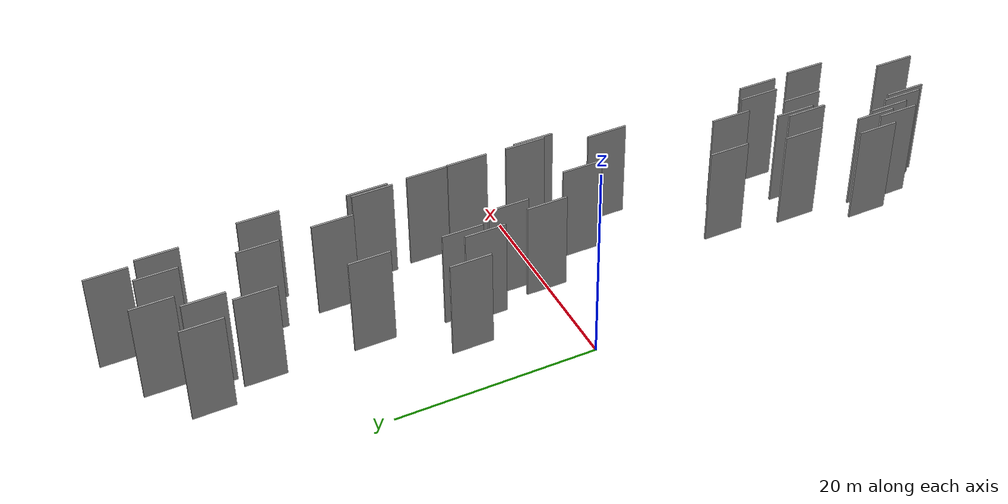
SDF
<sdf version="1.6">
 <world name="default">
  <scene>
   <sky><clouds><speed>12</speed></clouds></sky>
   <ambient>0.4 0.4 0.4 1</ambient>
   <background>0.7 0.7 0.7 1</background>
   <shadows>1</shadows>
  </scene>
  <gravity>0 0 -9.8066</gravity>
  <magnetic_field>6e-06 2.3e-05 -4.2e-05</magnetic_field>
  <physics default="0" name="default_physics" type="ode">
   <ode>
    <solver>
     <type>quick</type>
     <iters>10</iters>
     <sor>1.0</sor>
     <use_dynamic_moi_rescaling>0</use_dynamic_moi_rescaling>
    </solver>
    <constraints>
     <cfm>0</cfm>
     <erp>0.2</erp>
     <contact_max_correcting_vel>100</contact_max_correcting_vel>
     <contact_surface_layer>0.001</contact_surface_layer>
    </constraints>
   </ode>
   <max_step_size>0.004</max_step_size>
   <real_time_factor>1</real_time_factor>
   <real_time_update_rate>250</real_time_update_rate>
  </physics>
  <light name="sun" type="directional">
   <pose>0 0 10 0 0 0</pose>
   <diffuse>0.8 0.8 0.8 1</diffuse>
   <specular>0.2 0.2 0.2 1</specular>
   <attenuation>
    <range>1000</range>
    <constant>0.9</constant>
    <linear>0.01</linear>
    <quadratic>0.001</quadratic>
   </attenuation>
   <direction>-0.5 0.1 -0.9</direction>
  </light>
  <model name="grey_wall_1">
   <static>1</static>
   <pose>7.3173 -37.5238 2.5 0.000000 0.000000 1.570796</pose>
   <link name="link">
    <pose>0 0 5.00 0 0 0</pose>
    <collision name="collision"><geometry><box><size>4.00 0.2 10.00</size></box></geometry></collision>
    <visual name="visual">
     <cast_shadows>0</cast_shadows>
     <geometry><box><size>4.00 0.2 10.00</size></box></geometry>
     <material>
      <script>
       <uri>model://grey_wall/materials/scripts</uri>
       <uri>model://grey_wall/materials/textures</uri>
       <name>vrc/grey_wall</name>
      </script>
     </material>
    </visual>
   </link>
  </model>
  <model name="grey_wall_2">
   <static>1</static>
   <pose>5.8204 -34.6056 2.5 0.000000 0.000000 1.570796</pose>
   <link name="link">
    <pose>0 0 5.00 0 0 0</pose>
    <collision name="collision"><geometry><box><size>4.00 0.2 10.00</size></box></geometry></collision>
    <visual name="visual">
     <cast_shadows>0</cast_shadows>
     <geometry><box><size>4.00 0.2 10.00</size></box></geometry>
     <material>
      <script>
       <uri>model://grey_wall/materials/scripts</uri>
       <uri>model://grey_wall/materials/textures</uri>
       <name>vrc/grey_wall</name>
      </script>
     </material>
    </visual>
   </link>
  </model>
  <model name="grey_wall_3">
   <static>1</static>
   <pose>3.0021 10.9144 2.5 0.000000 0.000000 1.570796</pose>
   <link name="link">
    <pose>0 0 5.00 0 0 0</pose>
    <collision name="collision"><geometry><box><size>4.00 0.2 10.00</size></box></geometry></collision>
    <visual name="visual">
     <cast_shadows>0</cast_shadows>
     <geometry><box><size>4.00 0.2 10.00</size></box></geometry>
     <material>
      <script>
       <uri>model://grey_wall/materials/scripts</uri>
       <uri>model://grey_wall/materials/textures</uri>
       <name>vrc/grey_wall</name>
      </script>
     </material>
    </visual>
   </link>
  </model>
  <model name="grey_wall_4">
   <static>1</static>
   <pose>14.2386 -8.4530 2.5 0.000000 0.000000 1.570796</pose>
   <link name="link">
    <pose>0 0 5.00 0 0 0</pose>
    <collision name="collision"><geometry><box><size>4.00 0.2 10.00</size></box></geometry></collision>
    <visual name="visual">
     <cast_shadows>0</cast_shadows>
     <geometry><box><size>4.00 0.2 10.00</size></box></geometry>
     <material>
      <script>
       <uri>model://grey_wall/materials/scripts</uri>
       <uri>model://grey_wall/materials/textures</uri>
       <name>vrc/grey_wall</name>
      </script>
     </material>
    </visual>
   </link>
  </model>
  <model name="grey_wall_5">
   <static>1</static>
   <pose>6.6783 -17.2937 2.5 0.000000 0.000000 1.570796</pose>
   <link name="link">
    <pose>0 0 5.00 0 0 0</pose>
    <collision name="collision"><geometry><box><size>4.00 0.2 10.00</size></box></geometry></collision>
    <visual name="visual">
     <cast_shadows>0</cast_shadows>
     <geometry><box><size>4.00 0.2 10.00</size></box></geometry>
     <material>
      <script>
       <uri>model://grey_wall/materials/scripts</uri>
       <uri>model://grey_wall/materials/textures</uri>
       <name>vrc/grey_wall</name>
      </script>
     </material>
    </visual>
   </link>
  </model>
  <model name="grey_wall_6">
   <static>1</static>
   <pose>12.9910 -24.4684 2.5 0.000000 0.000000 1.570796</pose>
   <link name="link">
    <pose>0 0 5.00 0 0 0</pose>
    <collision name="collision"><geometry><box><size>4.00 0.2 10.00</size></box></geometry></collision>
    <visual name="visual">
     <cast_shadows>0</cast_shadows>
     <geometry><box><size>4.00 0.2 10.00</size></box></geometry>
     <material>
      <script>
       <uri>model://grey_wall/materials/scripts</uri>
       <uri>model://grey_wall/materials/textures</uri>
       <name>vrc/grey_wall</name>
      </script>
     </material>
    </visual>
   </link>
  </model>
  <model name="grey_wall_7">
   <static>1</static>
   <pose>11.1211 -20.2022 2.5 0.000000 0.000000 1.570796</pose>
   <link name="link">
    <pose>0 0 5.00 0 0 0</pose>
    <collision name="collision"><geometry><box><size>4.00 0.2 10.00</size></box></geometry></collision>
    <visual name="visual">
     <cast_shadows>0</cast_shadows>
     <geometry><box><size>4.00 0.2 10.00</size></box></geometry>
     <material>
      <script>
       <uri>model://grey_wall/materials/scripts</uri>
       <uri>model://grey_wall/materials/textures</uri>
       <name>vrc/grey_wall</name>
      </script>
     </material>
    </visual>
   </link>
  </model>
  <model name="grey_wall_8">
   <static>1</static>
   <pose>16.1027 5.1645 2.5 0.000000 0.000000 1.570796</pose>
   <link name="link">
    <pose>0 0 5.00 0 0 0</pose>
    <collision name="collision"><geometry><box><size>4.00 0.2 10.00</size></box></geometry></collision>
    <visual name="visual">
     <cast_shadows>0</cast_shadows>
     <geometry><box><size>4.00 0.2 10.00</size></box></geometry>
     <material>
      <script>
       <uri>model://grey_wall/materials/scripts</uri>
       <uri>model://grey_wall/materials/textures</uri>
       <name>vrc/grey_wall</name>
      </script>
     </material>
    </visual>
   </link>
  </model>
  <model name="grey_wall_9">
   <static>1</static>
   <pose>15.3145 39.4141 2.5 0.000000 0.000000 1.570796</pose>
   <link name="link">
    <pose>0 0 5.00 0 0 0</pose>
    <collision name="collision"><geometry><box><size>4.00 0.2 10.00</size></box></geometry></collision>
    <visual name="visual">
     <cast_shadows>0</cast_shadows>
     <geometry><box><size>4.00 0.2 10.00</size></box></geometry>
     <material>
      <script>
       <uri>model://grey_wall/materials/scripts</uri>
       <uri>model://grey_wall/materials/textures</uri>
       <name>vrc/grey_wall</name>
      </script>
     </material>
    </visual>
   </link>
  </model>
  <model name="grey_wall_10">
   <static>1</static>
   <pose>16.2475 -1.7299 2.5 0.000000 0.000000 1.570796</pose>
   <link name="link">
    <pose>0 0 5.00 0 0 0</pose>
    <collision name="collision"><geometry><box><size>4.00 0.2 10.00</size></box></geometry></collision>
    <visual name="visual">
     <cast_shadows>0</cast_shadows>
     <geometry><box><size>4.00 0.2 10.00</size></box></geometry>
     <material>
      <script>
       <uri>model://grey_wall/materials/scripts</uri>
       <uri>model://grey_wall/materials/textures</uri>
       <name>vrc/grey_wall</name>
      </script>
     </material>
    </visual>
   </link>
  </model>
  <model name="grey_wall_11">
   <static>1</static>
   <pose>4.7499 -34.8675 2.5 0.000000 0.000000 1.570796</pose>
   <link name="link">
    <pose>0 0 5.00 0 0 0</pose>
    <collision name="collision"><geometry><box><size>4.00 0.2 10.00</size></box></geometry></collision>
    <visual name="visual">
     <cast_shadows>0</cast_shadows>
     <geometry><box><size>4.00 0.2 10.00</size></box></geometry>
     <material>
      <script>
       <uri>model://grey_wall/materials/scripts</uri>
       <uri>model://grey_wall/materials/textures</uri>
       <name>vrc/grey_wall</name>
      </script>
     </material>
    </visual>
   </link>
  </model>
  <model name="grey_wall_12">
   <static>1</static>
   <pose>8.4133 4.6597 2.5 0.000000 0.000000 1.570796</pose>
   <link name="link">
    <pose>0 0 5.00 0 0 0</pose>
    <collision name="collision"><geometry><box><size>4.00 0.2 10.00</size></box></geometry></collision>
    <visual name="visual">
     <cast_shadows>0</cast_shadows>
     <geometry><box><size>4.00 0.2 10.00</size></box></geometry>
     <material>
      <script>
       <uri>model://grey_wall/materials/scripts</uri>
       <uri>model://grey_wall/materials/textures</uri>
       <name>vrc/grey_wall</name>
      </script>
     </material>
    </visual>
   </link>
  </model>
  <model name="grey_wall_13">
   <static>1</static>
   <pose>15.9140 34.7447 2.5 0.000000 0.000000 1.570796</pose>
   <link name="link">
    <pose>0 0 5.00 0 0 0</pose>
    <collision name="collision"><geometry><box><size>4.00 0.2 10.00</size></box></geometry></collision>
    <visual name="visual">
     <cast_shadows>0</cast_shadows>
     <geometry><box><size>4.00 0.2 10.00</size></box></geometry>
     <material>
      <script>
       <uri>model://grey_wall/materials/scripts</uri>
       <uri>model://grey_wall/materials/textures</uri>
       <name>vrc/grey_wall</name>
      </script>
     </material>
    </visual>
   </link>
  </model>
  <model name="grey_wall_14">
   <static>1</static>
   <pose>14.5474 -25.3134 2.5 0.000000 0.000000 1.570796</pose>
   <link name="link">
    <pose>0 0 5.00 0 0 0</pose>
    <collision name="collision"><geometry><box><size>4.00 0.2 10.00</size></box></geometry></collision>
    <visual name="visual">
     <cast_shadows>0</cast_shadows>
     <geometry><box><size>4.00 0.2 10.00</size></box></geometry>
     <material>
      <script>
       <uri>model://grey_wall/materials/scripts</uri>
       <uri>model://grey_wall/materials/textures</uri>
       <name>vrc/grey_wall</name>
      </script>
     </material>
    </visual>
   </link>
  </model>
  <model name="grey_wall_15">
   <static>1</static>
   <pose>8.5035 33.0226 2.5 0.000000 0.000000 1.570796</pose>
   <link name="link">
    <pose>0 0 5.00 0 0 0</pose>
    <collision name="collision"><geometry><box><size>4.00 0.2 10.00</size></box></geometry></collision>
    <visual name="visual">
     <cast_shadows>0</cast_shadows>
     <geometry><box><size>4.00 0.2 10.00</size></box></geometry>
     <material>
      <script>
       <uri>model://grey_wall/materials/scripts</uri>
       <uri>model://grey_wall/materials/textures</uri>
       <name>vrc/grey_wall</name>
      </script>
     </material>
    </visual>
   </link>
  </model>
  <model name="grey_wall_16">
   <static>1</static>
   <pose>10.4784 -3.8831 2.5 0.000000 0.000000 1.570796</pose>
   <link name="link">
    <pose>0 0 5.00 0 0 0</pose>
    <collision name="collision"><geometry><box><size>4.00 0.2 10.00</size></box></geometry></collision>
    <visual name="visual">
     <cast_shadows>0</cast_shadows>
     <geometry><box><size>4.00 0.2 10.00</size></box></geometry>
     <material>
      <script>
       <uri>model://grey_wall/materials/scripts</uri>
       <uri>model://grey_wall/materials/textures</uri>
       <name>vrc/grey_wall</name>
      </script>
     </material>
    </visual>
   </link>
  </model>
  <model name="grey_wall_17">
   <static>1</static>
   <pose>6.9984 9.8219 2.5 0.000000 0.000000 1.570796</pose>
   <link name="link">
    <pose>0 0 5.00 0 0 0</pose>
    <collision name="collision"><geometry><box><size>4.00 0.2 10.00</size></box></geometry></collision>
    <visual name="visual">
     <cast_shadows>0</cast_shadows>
     <geometry><box><size>4.00 0.2 10.00</size></box></geometry>
     <material>
      <script>
       <uri>model://grey_wall/materials/scripts</uri>
       <uri>model://grey_wall/materials/textures</uri>
       <name>vrc/grey_wall</name>
      </script>
     </material>
    </visual>
   </link>
  </model>
  <model name="grey_wall_18">
   <static>1</static>
   <pose>5.5448 34.1717 2.5 0.000000 0.000000 1.570796</pose>
   <link name="link">
    <pose>0 0 5.00 0 0 0</pose>
    <collision name="collision"><geometry><box><size>4.00 0.2 10.00</size></box></geometry></collision>
    <visual name="visual">
     <cast_shadows>0</cast_shadows>
     <geometry><box><size>4.00 0.2 10.00</size></box></geometry>
     <material>
      <script>
       <uri>model://grey_wall/materials/scripts</uri>
       <uri>model://grey_wall/materials/textures</uri>
       <name>vrc/grey_wall</name>
      </script>
     </material>
    </visual>
   </link>
  </model>
  <model name="grey_wall_19">
   <static>1</static>
   <pose>12.9956 26.5894 2.5 0.000000 0.000000 1.570796</pose>
   <link name="link">
    <pose>0 0 5.00 0 0 0</pose>
    <collision name="collision"><geometry><box><size>4.00 0.2 10.00</size></box></geometry></collision>
    <visual name="visual">
     <cast_shadows>0</cast_shadows>
     <geometry><box><size>4.00 0.2 10.00</size></box></geometry>
     <material>
      <script>
       <uri>model://grey_wall/materials/scripts</uri>
       <uri>model://grey_wall/materials/textures</uri>
       <name>vrc/grey_wall</name>
      </script>
     </material>
    </visual>
   </link>
  </model>
  <model name="grey_wall_20">
   <static>1</static>
   <pose>9.9508 37.0574 2.5 0.000000 0.000000 1.570796</pose>
   <link name="link">
    <pose>0 0 5.00 0 0 0</pose>
    <collision name="collision"><geometry><box><size>4.00 0.2 10.00</size></box></geometry></collision>
    <visual name="visual">
     <cast_shadows>0</cast_shadows>
     <geometry><box><size>4.00 0.2 10.00</size></box></geometry>
     <material>
      <script>
       <uri>model://grey_wall/materials/scripts</uri>
       <uri>model://grey_wall/materials/textures</uri>
       <name>vrc/grey_wall</name>
      </script>
     </material>
    </visual>
   </link>
  </model>
  <model name="grey_wall_21">
   <static>1</static>
   <pose>14.8064 -30.8882 2.5 0.000000 0.000000 1.570796</pose>
   <link name="link">
    <pose>0 0 5.00 0 0 0</pose>
    <collision name="collision"><geometry><box><size>4.00 0.2 10.00</size></box></geometry></collision>
    <visual name="visual">
     <cast_shadows>0</cast_shadows>
     <geometry><box><size>4.00 0.2 10.00</size></box></geometry>
     <material>
      <script>
       <uri>model://grey_wall/materials/scripts</uri>
       <uri>model://grey_wall/materials/textures</uri>
       <name>vrc/grey_wall</name>
      </script>
     </material>
    </visual>
   </link>
  </model>
  <model name="grey_wall_22">
   <static>1</static>
   <pose>16.1065 15.0691 2.5 0.000000 0.000000 1.570796</pose>
   <link name="link">
    <pose>0 0 5.00 0 0 0</pose>
    <collision name="collision"><geometry><box><size>4.00 0.2 10.00</size></box></geometry></collision>
    <visual name="visual">
     <cast_shadows>0</cast_shadows>
     <geometry><box><size>4.00 0.2 10.00</size></box></geometry>
     <material>
      <script>
       <uri>model://grey_wall/materials/scripts</uri>
       <uri>model://grey_wall/materials/textures</uri>
       <name>vrc/grey_wall</name>
      </script>
     </material>
    </visual>
   </link>
  </model>
  <model name="grey_wall_23">
   <static>1</static>
   <pose>7.2996 28.8524 2.5 0.000000 0.000000 1.570796</pose>
   <link name="link">
    <pose>0 0 5.00 0 0 0</pose>
    <collision name="collision"><geometry><box><size>4.00 0.2 10.00</size></box></geometry></collision>
    <visual name="visual">
     <cast_shadows>0</cast_shadows>
     <geometry><box><size>4.00 0.2 10.00</size></box></geometry>
     <material>
      <script>
       <uri>model://grey_wall/materials/scripts</uri>
       <uri>model://grey_wall/materials/textures</uri>
       <name>vrc/grey_wall</name>
      </script>
     </material>
    </visual>
   </link>
  </model>
  <model name="grey_wall_24">
   <static>1</static>
   <pose>10.8847 -28.0021 2.5 0.000000 0.000000 1.570796</pose>
   <link name="link">
    <pose>0 0 5.00 0 0 0</pose>
    <collision name="collision"><geometry><box><size>4.00 0.2 10.00</size></box></geometry></collision>
    <visual name="visual">
     <cast_shadows>0</cast_shadows>
     <geometry><box><size>4.00 0.2 10.00</size></box></geometry>
     <material>
      <script>
       <uri>model://grey_wall/materials/scripts</uri>
       <uri>model://grey_wall/materials/textures</uri>
       <name>vrc/grey_wall</name>
      </script>
     </material>
    </visual>
   </link>
  </model>
  <model name="grey_wall_25">
   <static>1</static>
   <pose>16.8069 25.2019 2.5 0.000000 0.000000 1.570796</pose>
   <link name="link">
    <pose>0 0 5.00 0 0 0</pose>
    <collision name="collision"><geometry><box><size>4.00 0.2 10.00</size></box></geometry></collision>
    <visual name="visual">
     <cast_shadows>0</cast_shadows>
     <geometry><box><size>4.00 0.2 10.00</size></box></geometry>
     <material>
      <script>
       <uri>model://grey_wall/materials/scripts</uri>
       <uri>model://grey_wall/materials/textures</uri>
       <name>vrc/grey_wall</name>
      </script>
     </material>
    </visual>
   </link>
  </model>
  <model name="grey_wall_26">
   <static>1</static>
   <pose>15.7711 14.7173 2.5 0.000000 0.000000 1.570796</pose>
   <link name="link">
    <pose>0 0 5.00 0 0 0</pose>
    <collision name="collision"><geometry><box><size>4.00 0.2 10.00</size></box></geometry></collision>
    <visual name="visual">
     <cast_shadows>0</cast_shadows>
     <geometry><box><size>4.00 0.2 10.00</size></box></geometry>
     <material>
      <script>
       <uri>model://grey_wall/materials/scripts</uri>
       <uri>model://grey_wall/materials/textures</uri>
       <name>vrc/grey_wall</name>
      </script>
     </material>
    </visual>
   </link>
  </model>
  <model name="grey_wall_27">
   <static>1</static>
   <pose>7.2424 18.5438 2.5 0.000000 0.000000 1.570796</pose>
   <link name="link">
    <pose>0 0 5.00 0 0 0</pose>
    <collision name="collision"><geometry><box><size>4.00 0.2 10.00</size></box></geometry></collision>
    <visual name="visual">
     <cast_shadows>0</cast_shadows>
     <geometry><box><size>4.00 0.2 10.00</size></box></geometry>
     <material>
      <script>
       <uri>model://grey_wall/materials/scripts</uri>
       <uri>model://grey_wall/materials/textures</uri>
       <name>vrc/grey_wall</name>
      </script>
     </material>
    </visual>
   </link>
  </model>
  <model name="grey_wall_28">
   <static>1</static>
   <pose>7.1279 1.4620 2.5 0.000000 0.000000 1.570796</pose>
   <link name="link">
    <pose>0 0 5.00 0 0 0</pose>
    <collision name="collision"><geometry><box><size>4.00 0.2 10.00</size></box></geometry></collision>
    <visual name="visual">
     <cast_shadows>0</cast_shadows>
     <geometry><box><size>4.00 0.2 10.00</size></box></geometry>
     <material>
      <script>
       <uri>model://grey_wall/materials/scripts</uri>
       <uri>model://grey_wall/materials/textures</uri>
       <name>vrc/grey_wall</name>
      </script>
     </material>
    </visual>
   </link>
  </model>
  <model name="grey_wall_29">
   <static>1</static>
   <pose>13.3449 19.5217 2.5 0.000000 0.000000 1.570796</pose>
   <link name="link">
    <pose>0 0 5.00 0 0 0</pose>
    <collision name="collision"><geometry><box><size>4.00 0.2 10.00</size></box></geometry></collision>
    <visual name="visual">
     <cast_shadows>0</cast_shadows>
     <geometry><box><size>4.00 0.2 10.00</size></box></geometry>
     <material>
      <script>
       <uri>model://grey_wall/materials/scripts</uri>
       <uri>model://grey_wall/materials/textures</uri>
       <name>vrc/grey_wall</name>
      </script>
     </material>
    </visual>
   </link>
  </model>
  <model name="grey_wall_30">
   <static>1</static>
   <pose>8.6484 -27.1257 2.5 0.000000 0.000000 1.570796</pose>
   <link name="link">
    <pose>0 0 5.00 0 0 0</pose>
    <collision name="collision"><geometry><box><size>4.00 0.2 10.00</size></box></geometry></collision>
    <visual name="visual">
     <cast_shadows>0</cast_shadows>
     <geometry><box><size>4.00 0.2 10.00</size></box></geometry>
     <material>
      <script>
       <uri>model://grey_wall/materials/scripts</uri>
       <uri>model://grey_wall/materials/textures</uri>
       <name>vrc/grey_wall</name>
      </script>
     </material>
    </visual>
   </link>
  </model>
  <model name="grey_wall_31">
   <static>1</static>
   <pose>3.3136 -31.5297 2.5 0.000000 0.000000 1.570796</pose>
   <link name="link">
    <pose>0 0 5.00 0 0 0</pose>
    <collision name="collision"><geometry><box><size>4.00 0.2 10.00</size></box></geometry></collision>
    <visual name="visual">
     <cast_shadows>0</cast_shadows>
     <geometry><box><size>4.00 0.2 10.00</size></box></geometry>
     <material>
      <script>
       <uri>model://grey_wall/materials/scripts</uri>
       <uri>model://grey_wall/materials/textures</uri>
       <name>vrc/grey_wall</name>
      </script>
     </material>
    </visual>
   </link>
  </model>
  <model name="grey_wall_32">
   <static>1</static>
   <pose>16.0480 9.2440 2.5 0.000000 0.000000 1.570796</pose>
   <link name="link">
    <pose>0 0 5.00 0 0 0</pose>
    <collision name="collision"><geometry><box><size>4.00 0.2 10.00</size></box></geometry></collision>
    <visual name="visual">
     <cast_shadows>0</cast_shadows>
     <geometry><box><size>4.00 0.2 10.00</size></box></geometry>
     <material>
      <script>
       <uri>model://grey_wall/materials/scripts</uri>
       <uri>model://grey_wall/materials/textures</uri>
       <name>vrc/grey_wall</name>
      </script>
     </material>
    </visual>
   </link>
  </model>
  <model name="grey_wall_33">
   <static>1</static>
   <pose>11.8660 -39.4650 2.5 0.000000 0.000000 1.570796</pose>
   <link name="link">
    <pose>0 0 5.00 0 0 0</pose>
    <collision name="collision"><geometry><box><size>4.00 0.2 10.00</size></box></geometry></collision>
    <visual name="visual">
     <cast_shadows>0</cast_shadows>
     <geometry><box><size>4.00 0.2 10.00</size></box></geometry>
     <material>
      <script>
       <uri>model://grey_wall/materials/scripts</uri>
       <uri>model://grey_wall/materials/textures</uri>
       <name>vrc/grey_wall</name>
      </script>
     </material>
    </visual>
   </link>
  </model>
  <model name="grey_wall_34">
   <static>1</static>
   <pose>5.2605 -32.6557 2.5 0.000000 0.000000 1.570796</pose>
   <link name="link">
    <pose>0 0 5.00 0 0 0</pose>
    <collision name="collision"><geometry><box><size>4.00 0.2 10.00</size></box></geometry></collision>
    <visual name="visual">
     <cast_shadows>0</cast_shadows>
     <geometry><box><size>4.00 0.2 10.00</size></box></geometry>
     <material>
      <script>
       <uri>model://grey_wall/materials/scripts</uri>
       <uri>model://grey_wall/materials/textures</uri>
       <name>vrc/grey_wall</name>
      </script>
     </material>
    </visual>
   </link>
  </model>
  <model name="grey_wall_35">
   <static>1</static>
   <pose>6.7639 -36.7947 2.5 0.000000 0.000000 1.570796</pose>
   <link name="link">
    <pose>0 0 5.00 0 0 0</pose>
    <collision name="collision"><geometry><box><size>4.00 0.2 10.00</size></box></geometry></collision>
    <visual name="visual">
     <cast_shadows>0</cast_shadows>
     <geometry><box><size>4.00 0.2 10.00</size></box></geometry>
     <material>
      <script>
       <uri>model://grey_wall/materials/scripts</uri>
       <uri>model://grey_wall/materials/textures</uri>
       <name>vrc/grey_wall</name>
      </script>
     </material>
    </visual>
   </link>
  </model>
  <model name="grey_wall_36">
   <static>1</static>
   <pose>13.4171 35.5867 2.5 0.000000 0.000000 1.570796</pose>
   <link name="link">
    <pose>0 0 5.00 0 0 0</pose>
    <collision name="collision"><geometry><box><size>4.00 0.2 10.00</size></box></geometry></collision>
    <visual name="visual">
     <cast_shadows>0</cast_shadows>
     <geometry><box><size>4.00 0.2 10.00</size></box></geometry>
     <material>
      <script>
       <uri>model://grey_wall/materials/scripts</uri>
       <uri>model://grey_wall/materials/textures</uri>
       <name>vrc/grey_wall</name>
      </script>
     </material>
    </visual>
   </link>
  </model>
  <model name="grey_wall_37">
   <static>1</static>
   <pose>6.0990 8.0452 2.5 0.000000 0.000000 1.570796</pose>
   <link name="link">
    <pose>0 0 5.00 0 0 0</pose>
    <collision name="collision"><geometry><box><size>4.00 0.2 10.00</size></box></geometry></collision>
    <visual name="visual">
     <cast_shadows>0</cast_shadows>
     <geometry><box><size>4.00 0.2 10.00</size></box></geometry>
     <material>
      <script>
       <uri>model://grey_wall/materials/scripts</uri>
       <uri>model://grey_wall/materials/textures</uri>
       <name>vrc/grey_wall</name>
      </script>
     </material>
    </visual>
   </link>
  </model>
  <model name="grey_wall_38">
   <static>1</static>
   <pose>9.1053 -26.1152 2.5 0.000000 0.000000 1.570796</pose>
   <link name="link">
    <pose>0 0 5.00 0 0 0</pose>
    <collision name="collision"><geometry><box><size>4.00 0.2 10.00</size></box></geometry></collision>
    <visual name="visual">
     <cast_shadows>0</cast_shadows>
     <geometry><box><size>4.00 0.2 10.00</size></box></geometry>
     <material>
      <script>
       <uri>model://grey_wall/materials/scripts</uri>
       <uri>model://grey_wall/materials/textures</uri>
       <name>vrc/grey_wall</name>
      </script>
     </material>
    </visual>
   </link>
  </model>
  <model name="grey_wall_39">
   <static>1</static>
   <pose>5.7285 -24.8703 2.5 0.000000 0.000000 1.570796</pose>
   <link name="link">
    <pose>0 0 5.00 0 0 0</pose>
    <collision name="collision"><geometry><box><size>4.00 0.2 10.00</size></box></geometry></collision>
    <visual name="visual">
     <cast_shadows>0</cast_shadows>
     <geometry><box><size>4.00 0.2 10.00</size></box></geometry>
     <material>
      <script>
       <uri>model://grey_wall/materials/scripts</uri>
       <uri>model://grey_wall/materials/textures</uri>
       <name>vrc/grey_wall</name>
      </script>
     </material>
    </visual>
   </link>
  </model>
  <model name="grey_wall_40">
   <static>1</static>
   <pose>16.0185 -0.7565 2.5 0.000000 0.000000 1.570796</pose>
   <link name="link">
    <pose>0 0 5.00 0 0 0</pose>
    <collision name="collision"><geometry><box><size>4.00 0.2 10.00</size></box></geometry></collision>
    <visual name="visual">
     <cast_shadows>0</cast_shadows>
     <geometry><box><size>4.00 0.2 10.00</size></box></geometry>
     <material>
      <script>
       <uri>model://grey_wall/materials/scripts</uri>
       <uri>model://grey_wall/materials/textures</uri>
       <name>vrc/grey_wall</name>
      </script>
     </material>
    </visual>
   </link>
  </model>
 </world>
</sdf>
